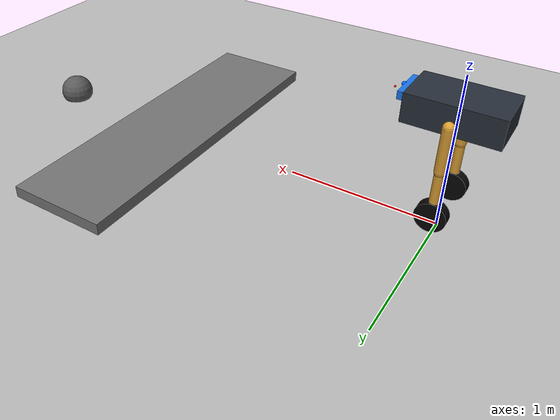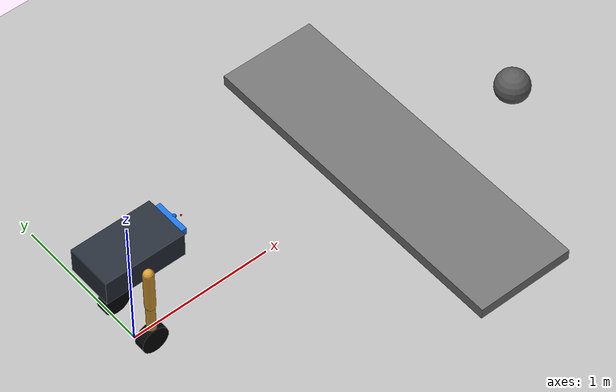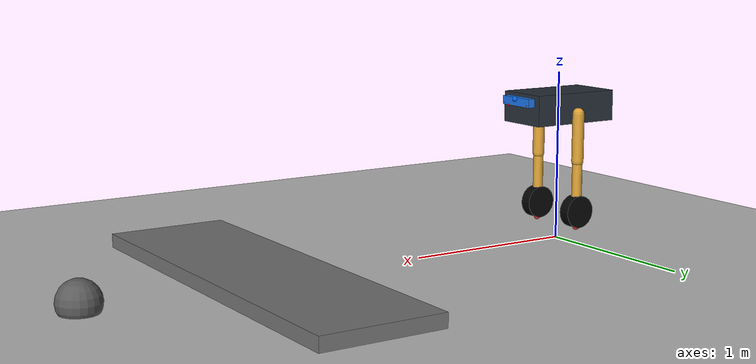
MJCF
<mujoco model="two_wheel_legged_robot_realistic">

  <compiler angle="radian" coordinate="local" inertiafromgeom="true"/>
  <option timestep="0.002" integrator="RK4" gravity="0 0 -9.81" cone="elliptic" jacobian="dense" solver="Newton"/>

  <size njmax="2000" nconmax="400"/>

  <default>
    <joint limited="true" damping="1.0" armature="0.02" frictionloss="0.02"/>
    <geom contype="1" conaffinity="1" margin="0.001" condim="6"
          friction="1.2 0.08 0.02" solref="0.01 1" solimp="0.9 0.95 0.001"/>

    <!-- Position-controlled leg joints, similar to real servo-level target position control. -->
    <position kp="70" kv="4" ctrllimited="true" forcelimited="true"/>

    <!-- Velocity-controlled wheels, closer to motor driver velocity command. -->
    <velocity kv="8" ctrllimited="true" forcelimited="true"/>
  </default>

  <asset>
    <texture name="grid" type="2d" builtin="checker" rgb1="0.9 0.9 0.9" rgb2="0.55 0.55 0.55"
             width="300" height="300" mark="edge" markrgb="0.2 0.2 0.2"/>
    <material name="ground_mat" texture="grid" texrepeat="4 4" texuniform="true" reflectance="0.15"/>
    <material name="body_mat" rgba="0.15 0.18 0.22 1"/>
    <material name="link_mat" rgba="0.85 0.62 0.20 1"/>
    <material name="wheel_mat" rgba="0.02 0.02 0.025 1"/>
    <material name="sensor_mat" rgba="0.1 0.45 0.9 1"/>
  </asset>

  <worldbody>
    <light name="sun" directional="true" pos="0 0 4" dir="0 0 -1" diffuse="0.8 0.8 0.8"/>
    <camera name="overview" pos="-3 -3 2" xyaxes="0.707 -0.707 0 0.35 0.35 0.866"/>
    <geom name="ground" type="plane" size="20 20 0.1" material="ground_mat"/>

    <!-- Optional terrain obstacles for later curriculum. Keep disabled initially if training is unstable. -->
    <geom name="low_step" type="box" pos="2.0 0 0.04" size="0.35 1.2 0.04" rgba="0.45 0.45 0.45 1"/>
    <geom name="small_bump" type="sphere" pos="3.0 0 0.05" size="0.12" rgba="0.35 0.35 0.35 1"/>

    <!-- ================= Robot ================= -->
    <body name="base" pos="0 0 0.80">
      <freejoint name="floating_base"/>

      <!-- Main body: simplified electronics/battery chassis. -->
      <inertial pos="0 0 0" mass="7.5" diaginertia="0.16 0.10 0.18"/>
      <geom name="base_collision" type="box" size="0.28 0.16 0.09" material="body_mat"/>
      <geom name="front_sensor_bar" type="box" pos="0.30 0 0.045" size="0.025 0.12 0.025" material="sensor_mat" contype="0" conaffinity="0"/>

      <!-- Sites for realistic onboard sensors. -->
      <site name="imu_site" pos="0 0 0.04" size="0.012" rgba="0 1 0 1"/>
      <site name="camera_site" pos="0.33 0 0.06" euler="0 0 0" size="0.015" rgba="0 0.4 1 1"/>
      <camera name="front_camera" mode="fixed" pos="0.34 0 0.07" xyaxes="0 -1 0 0 0 1" fovy="70"/>

      <!-- Downward/front rangefinder sites. Their local +Z direction is the sensing ray in MuJoCo. -->
      <site name="ray_front_center" pos="0.38 0 0.03" euler="0 1.05 0" size="0.006" rgba="1 0 0 1"/>
      <site name="ray_front_left"   pos="0.32 0.10 0.03" euler="0 1.05 0" size="0.006" rgba="1 0 0 1"/>
      <site name="ray_front_right"  pos="0.32 -0.10 0.03" euler="0 1.05 0" size="0.006" rgba="1 0 0 1"/>
      <site name="ray_down_center"  pos="0.05 0 0.00" euler="0 3.14159 0" size="0.006" rgba="1 0 0 1"/>

      <!-- Left leg: hip pitch + knee pitch + active wheel. -->
      <body name="left_upper_leg" pos="0 0.18 -0.03">
        <joint name="left_hip_pitch" type="hinge" axis="0 1 0" range="-1.2 1.2" damping="1.5"/>
        <geom name="left_thigh" type="capsule" fromto="0 0 0 0 0 -0.28" size="0.035" material="link_mat" mass="0.75"/>

        <body name="left_lower_leg" pos="0 0 -0.28">
          <joint name="left_knee_pitch" type="hinge" axis="0 1 0" range="-2.2 0.15" damping="1.2"/>
          <geom name="left_shin" type="capsule" fromto="0 0 0 0 0 -0.28" size="0.03" material="link_mat" mass="0.55"/>

          <body name="left_wheel" pos="0 0 -0.30">
            <joint name="left_wheel_joint" type="hinge" axis="0 1 0" limited="false" damping="0.03" armature="0.01" frictionloss="0.005"/>
            <geom name="left_wheel_geom" type="cylinder" size="0.095 0.035" quat="0.7071068 0.7071068 0 0"
                  material="wheel_mat" mass="0.45" friction="1.6 0.03 0.005"/>
            <site name="left_wheel_contact" pos="0 0 -0.095" size="0.018" rgba="1 0.2 0.2 1"/>
          </body>
        </body>
      </body>

      <!-- Right leg: mirrored. -->
      <body name="right_upper_leg" pos="0 -0.18 -0.03">
        <joint name="right_hip_pitch" type="hinge" axis="0 1 0" range="-1.2 1.2" damping="1.5"/>
        <geom name="right_thigh" type="capsule" fromto="0 0 0 0 0 -0.28" size="0.035" material="link_mat" mass="0.75"/>

        <body name="right_lower_leg" pos="0 0 -0.28">
          <joint name="right_knee_pitch" type="hinge" axis="0 1 0" range="-2.2 0.15" damping="1.2"/>
          <geom name="right_shin" type="capsule" fromto="0 0 0 0 0 -0.28" size="0.03" material="link_mat" mass="0.55"/>

          <body name="right_wheel" pos="0 0 -0.30">
            <joint name="right_wheel_joint" type="hinge" axis="0 1 0" limited="false" damping="0.03" armature="0.01" frictionloss="0.005"/>
            <geom name="right_wheel_geom" type="cylinder" size="0.095 0.035" quat="0.7071068 0.7071068 0 0"
                  material="wheel_mat" mass="0.45" friction="1.6 0.03 0.005"/>
            <site name="right_wheel_contact" pos="0 0 -0.095" size="0.018" rgba="1 0.2 0.2 1"/>
          </body>
        </body>
      </body>
    </body>
  </worldbody>

  <actuator>
    <!-- Legs: target position commands. RL action can output desired joint angles. -->
    <position name="left_hip_servo" joint="left_hip_pitch" ctrlrange="-1.2 1.2" forcerange="-80 80"/>
    <position name="left_knee_servo" joint="left_knee_pitch" ctrlrange="-2.2 0.15" forcerange="-80 80"/>
    <position name="right_hip_servo" joint="right_hip_pitch" ctrlrange="-1.2 1.2" forcerange="-80 80"/>
    <position name="right_knee_servo" joint="right_knee_pitch" ctrlrange="-2.2 0.15" forcerange="-80 80"/>

    <!-- Wheels: velocity commands. RL action can output desired wheel angular velocity. -->
    <velocity name="left_wheel_velocity" joint="left_wheel_joint" ctrlrange="-35 35" forcerange="-35 35"/>
    <velocity name="right_wheel_velocity" joint="right_wheel_joint" ctrlrange="-35 35" forcerange="-35 35"/>
  </actuator>

  <sensor>
    <!-- Floating-base state / IMU-like sensors. -->
    <framepos name="base_position" objtype="body" objname="base"/>
    <framequat name="base_orientation" objtype="body" objname="base"/>
    <velocimeter name="base_linear_velocity" site="imu_site"/>
    <gyro name="base_angular_velocity" site="imu_site"/>
    <accelerometer name="base_linear_acceleration" site="imu_site"/>

    <!-- Joint encoders. -->
    <jointpos name="left_hip_pos" joint="left_hip_pitch"/>
    <jointpos name="left_knee_pos" joint="left_knee_pitch"/>
    <jointpos name="right_hip_pos" joint="right_hip_pitch"/>
    <jointpos name="right_knee_pos" joint="right_knee_pitch"/>
    <jointvel name="left_hip_vel" joint="left_hip_pitch"/>
    <jointvel name="left_knee_vel" joint="left_knee_pitch"/>
    <jointvel name="right_hip_vel" joint="right_hip_pitch"/>
    <jointvel name="right_knee_vel" joint="right_knee_pitch"/>

    <!-- Wheel encoders. -->
    <jointvel name="left_wheel_speed" joint="left_wheel_joint"/>
    <jointvel name="right_wheel_speed" joint="right_wheel_joint"/>

    <!-- Contact/load sensing near wheel-ground contact. -->
    <touch name="left_wheel_touch" site="left_wheel_contact"/>
    <touch name="right_wheel_touch" site="right_wheel_contact"/>

    <!-- Simple exteroceptive perception: range sensors for terrain preview. -->
    <rangefinder name="front_center_range" site="ray_front_center"/>
    <rangefinder name="front_left_range" site="ray_front_left"/>
    <rangefinder name="front_right_range" site="ray_front_right"/>
    <rangefinder name="down_center_range" site="ray_down_center"/>
  </sensor>

  <keyframe>
    <!-- A nominal crouched standing pose. qpos = 7 floating-base + 6 actuated/hinge qpos. -->
    <key name="stand" qpos="0 0 0.62 1 0 0 0  0.35 -0.75 0  0.35 -0.75 0"/>
  </keyframe>
</mujoco>
